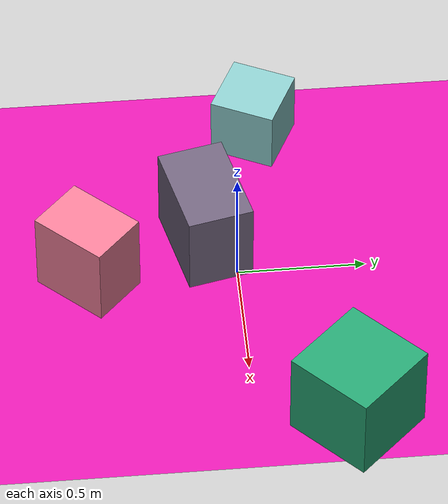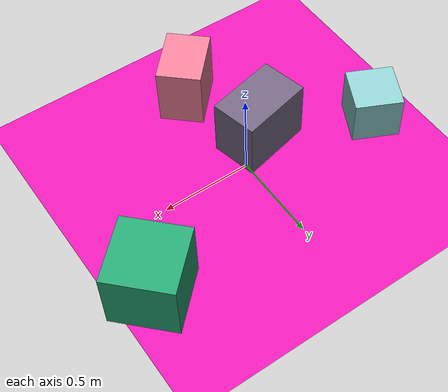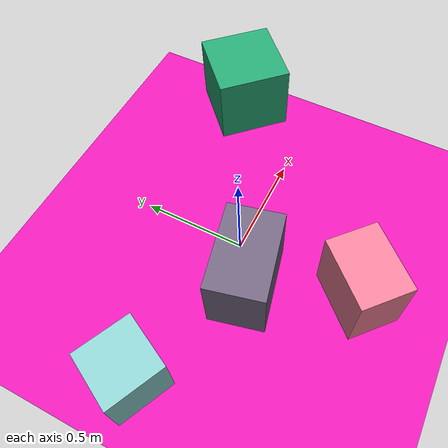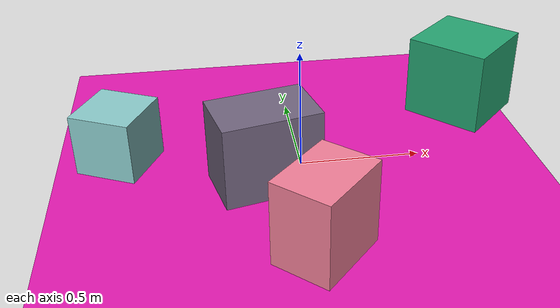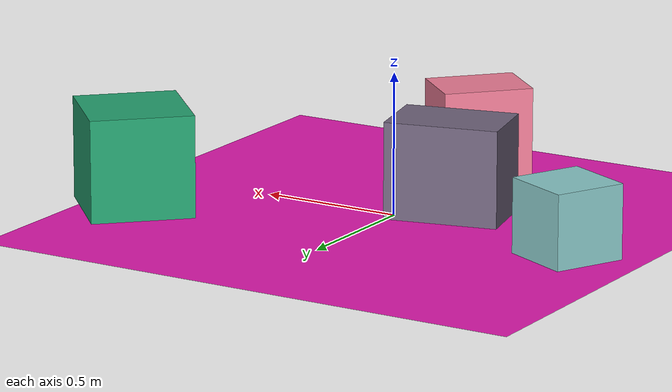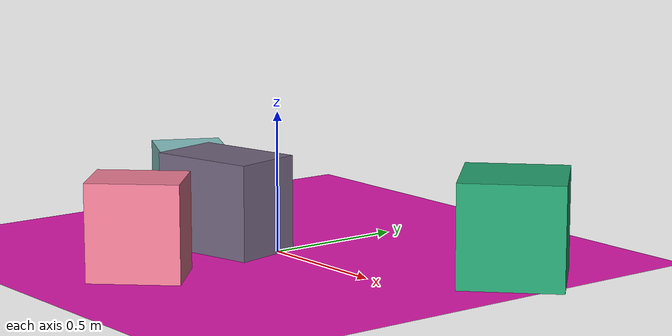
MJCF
<mujoco>
   <asset>
<texture type="skybox" builtin="gradient" rgb1="0.5 0.9 0.0" rgb2="0.3 0.1 1.0" width="256" height="256"/>
<texture name="gradient_0" builtin="gradient" rgb1="0.2 0.3 0.1" rgb2="0.7 0.5 0.9" width="200" height="200"/>
<texture name="checker_1" builtin="checker" rgb1="0.9 0.8 0.9" rgb2="1.0 0.2 0.3" width="200" height="200"/>
<texture name="gradient_2" builtin="gradient" rgb1="0.2 0.8 0.0" rgb2="0.1 0.5 0.9" width="200" height="200"/>
<texture name="gradient_3" builtin="gradient" rgb1="1.0 0.8 0.7" rgb2="0.1 0.8 0.9" width="200" height="200"/><material name="gradient_0_mat" reflectance="0" texture="gradient_0" texuniform="true"/>
<material name="checker_1_mat" reflectance="0" texrepeat="9 9" texture="checker_1" texuniform="false" />
<material name="gradient_2_mat" reflectance="0" texture="gradient_2" texuniform="true"/>
<material name="gradient_3_mat" reflectance="0" texture="gradient_3" texuniform="true"/>
   </asset>

   <worldbody>
      <light diffuse=".9 .9 .9" pos="0 0 3" dir="0 0 -1"/>
     <geom type="plane" size="1 1 0.1" rgba="0.9 0.1 0.7 1"/>
<geom type="box" pos="-0.16 -0.11 0.17" size="0.2 0.13 0.17" material="gradient_0_mat" euler="0 0 13" />
<geom type="box" pos="-0.0 -0.58 0.17" size="0.16 0.12 0.17" material="checker_1_mat" euler="0 0 47" />
<geom type="box" pos="0.81 0.38 0.18" size="0.18 0.18 0.18" material="gradient_2_mat" euler="0 0 44" />
<geom type="box" pos="-0.74 0.13 0.13" size="0.13 0.13 0.13" material="gradient_3_mat" euler="0 0 64" /><camera euler="60 0 180" fovy="60" name="camera1" pos="-0.2 -1.5 1"></camera>   </worldbody>
</mujoco>
